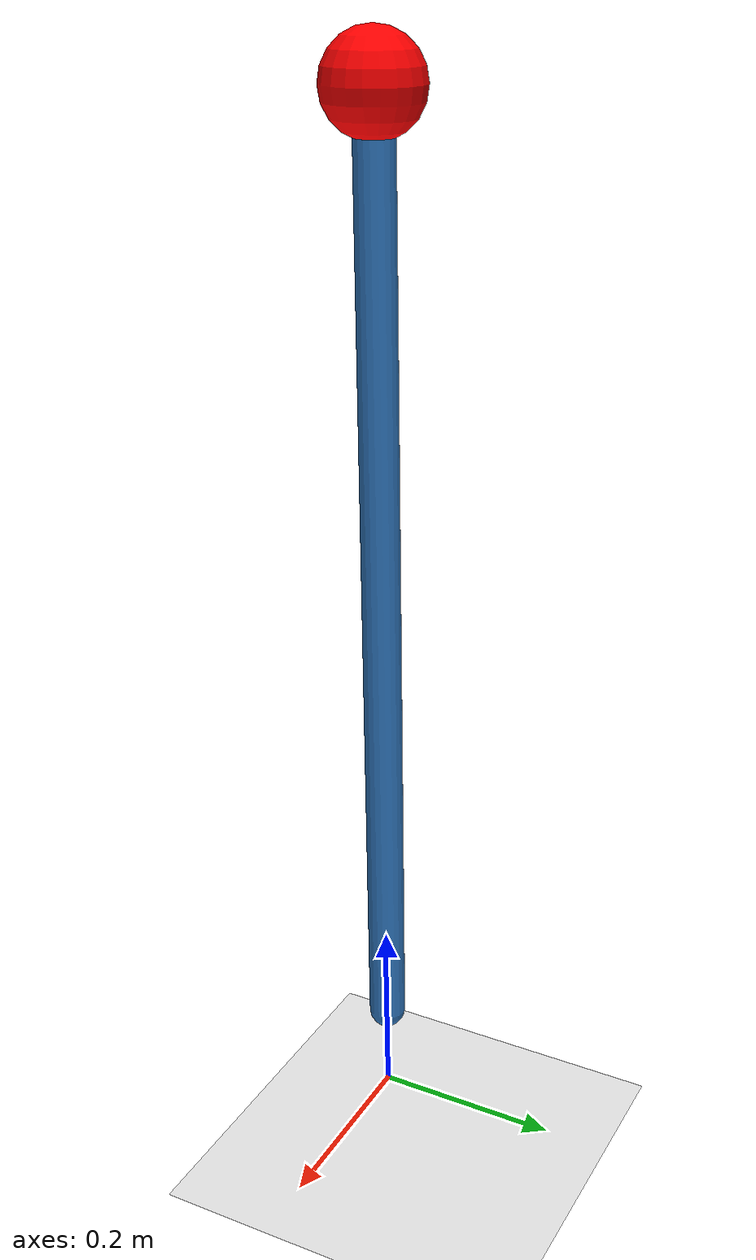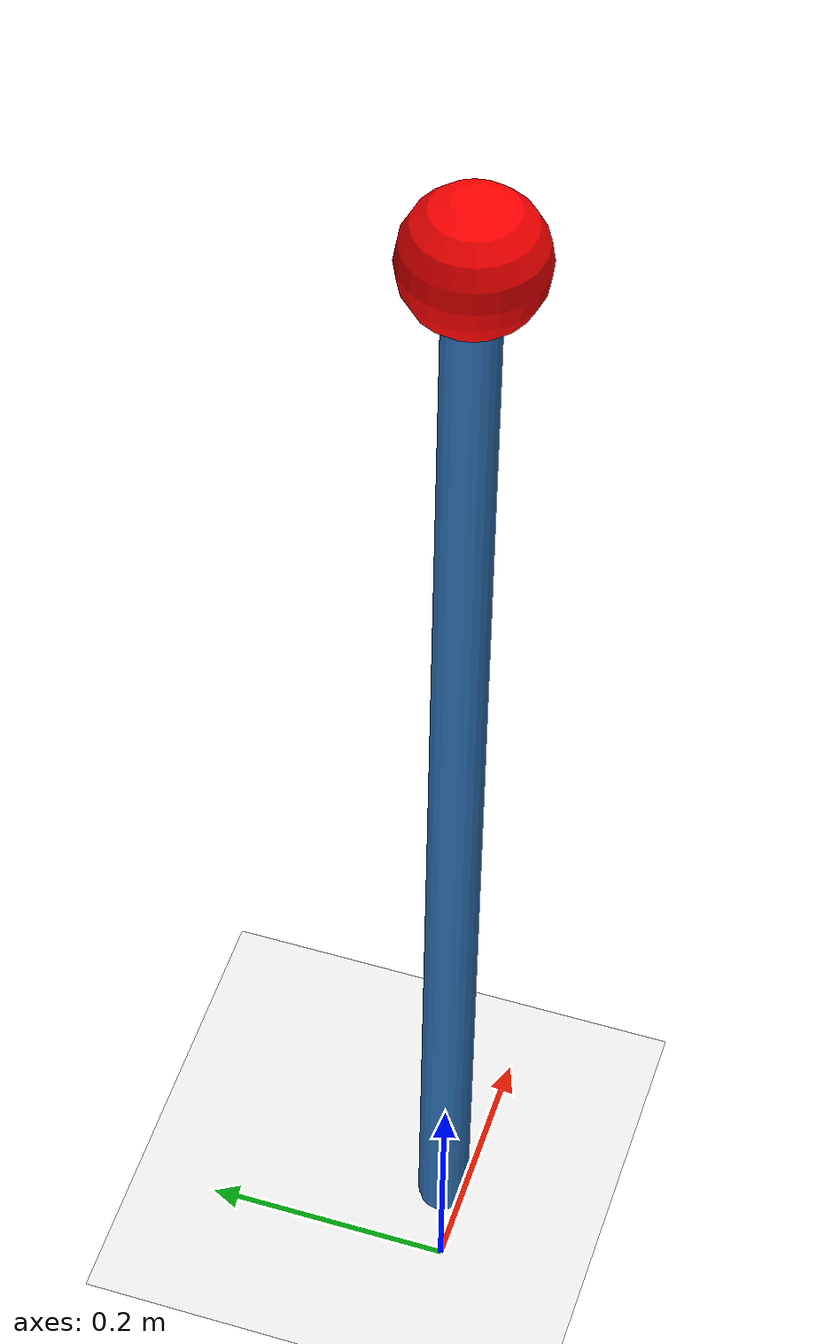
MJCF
<mujoco model="inverted_pendulum">
    <option timestep="0.002" gravity="0 0 -9.81" />

    <worldbody>
        <!-- Ground plane -->
        <geom name="ground" type="plane" size="2 2 0.1" rgba="0.9 0.9 0.9 1"/>

        <!-- Pendulum base -->
        <body name="cart" pos="0 0 0.1">
            <!-- Hinge joint allows rotation in x-z plane -->
            <joint name="hinge" type="hinge" axis="0 1 0" limited="false" damping="0.01"/>

            <!-- The pendulum rod -->
            <geom name="rod" type="capsule" fromto="0 0 0 0 0 1" size="0.02" rgba="0.2 0.5 0.8 1" density="1000"/>

            <!-- Ball at top of pendulum -->
            <geom name="ball" type="sphere" pos="0 0 1" size="0.05" rgba="1 0 0 1" density="500"/>

            <!-- Mass properties for rod+ball (approximate for balance) -->
            <inertial pos="0 0 0.5" mass="0.55" diaginertia="0.002 0.002 0.002"/>
        </body>
    </worldbody>

    <actuator>
        <!-- Optional: motor at the hinge -->
        <motor name="hinge_motor" joint="hinge" ctrlrange="-5 5" />
    </actuator>
</mujoco>
